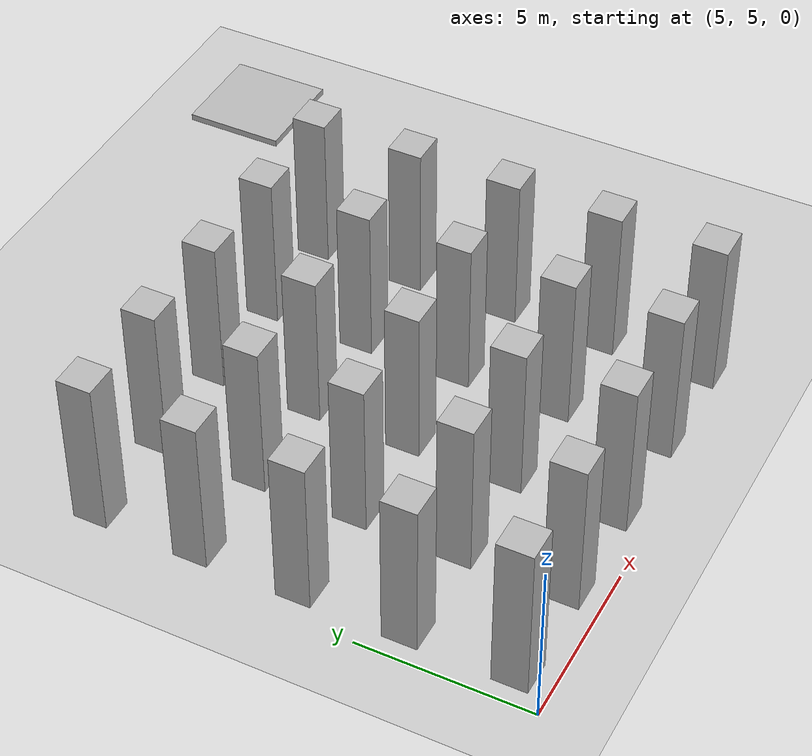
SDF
<sdf version="1.6">
 <world name="default">
  <light name="sun" type="directional">
   <pose>0 0 10 0 0 0</pose>
   <diffuse>0.8 0.8 0.8 1</diffuse>
   <specular>0.2 0.2 0.2 1</specular>
   <attenuation>
    <range>1000</range>
    <constant>0.9</constant>
    <linear>0.01</linear>
    <quadratic>0.001</quadratic>
   </attenuation>
   <direction>-0.5 0.1 -0.9</direction>
  </light>
  <model name="ground_plane">
   <static>1</static>
   <link name="link">
    <collision name="collision">
     <geometry><plane><normal>0 0 1</normal><size>100 100</size></plane></geometry>
     <surface>
      <contact><collide_bitmask>65535</collide_bitmask></contact>
      <friction><ode><mu>100</mu><mu2>50</mu2></ode></friction>
     </surface>
    </collision>
    <visual name="visual">
     <cast_shadows>0</cast_shadows>
     <geometry><plane><normal>0 0 1</normal><size>100 100</size></plane></geometry>
     <material>
      <script><uri>file://media/materials/scripts/gazebo.material</uri><name>Gazebo/Grey</name></script>
     </material>
    </visual>
   </link>
  </model>
  <physics name="default_physics" default="0" type="ode">
   <ode>
    <solver>
     <type>quick</type>
     <iters>10</iters>
     <sor>1.3</sor>
     <use_dynamic_moi_rescaling>0</use_dynamic_moi_rescaling>
    </solver>
    <constraints>
     <cfm>0</cfm>
     <erp>0.2</erp>
     <contact_max_correcting_vel>100</contact_max_correcting_vel>
     <contact_surface_layer>0.001</contact_surface_layer>
    </constraints>
   </ode>
   <max_step_size>0.004</max_step_size>
   <real_time_factor>1</real_time_factor>
   <real_time_update_rate>250</real_time_update_rate>
  </physics>
  <model name="goal">
   <pose>23 23 0.1 0 0 0</pose>
   <link name="link">
    <collision name="collision"><geometry><box><size>3.0 3.0 0.2</size></box></geometry></collision>
    <visual name="visual"><geometry><box><size>3.0 3.0 0.2</size></box></geometry></visual>
    <inertial>
     <inertia><ixx>1</ixx><ixy>0</ixy><ixz>0</ixz><iyy>1</iyy><iyz>0</iyz><izz>1</izz></inertia>
     <mass>1</mass>
    </inertial>
   </link>
  </model>
  <model name="box01">
   <pose>6 6 2.4 0 0 0</pose>
   <link name="link">
    <collision name="collision"><geometry><box><size>1.0 1.0 4.8</size></box></geometry></collision>
    <visual name="visual"><geometry><box><size>1.0 1.0 4.8</size></box></geometry></visual>
    <inertial>
     <inertia><ixx>1</ixx><ixy>0</ixy><ixz>0</ixz><iyy>1</iyy><iyz>0</iyz><izz>1</izz></inertia>
     <mass>1</mass>
    </inertial>
   </link>
  </model>
  <model name="box02">
   <pose>6 9 2.4 0 0 0</pose>
   <link name="link">
    <collision name="collision"><geometry><box><size>1.0 1.0 4.8</size></box></geometry></collision>
    <visual name="visual"><geometry><box><size>1.0 1.0 4.8</size></box></geometry></visual>
    <inertial>
     <inertia><ixx>1</ixx><ixy>0</ixy><ixz>0</ixz><iyy>1</iyy><iyz>0</iyz><izz>1</izz></inertia>
     <mass>1</mass>
    </inertial>
   </link>
  </model>
  <model name="box03">
   <pose>6 12 2.4 0 0 0</pose>
   <link name="link">
    <collision name="collision"><geometry><box><size>1.0 1.0 4.8</size></box></geometry></collision>
    <visual name="visual"><geometry><box><size>1.0 1.0 4.8</size></box></geometry></visual>
    <inertial>
     <inertia><ixx>1</ixx><ixy>0</ixy><ixz>0</ixz><iyy>1</iyy><iyz>0</iyz><izz>1</izz></inertia>
     <mass>1</mass>
    </inertial>
   </link>
  </model>
  <model name="box04">
   <pose>6 15 2.4 0 0 0</pose>
   <link name="link">
    <collision name="collision"><geometry><box><size>1.0 1.0 4.8</size></box></geometry></collision>
    <visual name="visual"><geometry><box><size>1.0 1.0 4.8</size></box></geometry></visual>
    <inertial>
     <inertia><ixx>1</ixx><ixy>0</ixy><ixz>0</ixz><iyy>1</iyy><iyz>0</iyz><izz>1</izz></inertia>
     <mass>1</mass>
    </inertial>
   </link>
  </model>
  <model name="box05">
   <pose>6 18 2.4 0 0 0</pose>
   <link name="link">
    <collision name="collision"><geometry><box><size>1.0 1.0 4.8</size></box></geometry></collision>
    <visual name="visual"><geometry><box><size>1.0 1.0 4.8</size></box></geometry></visual>
    <inertial>
     <inertia><ixx>1</ixx><ixy>0</ixy><ixz>0</ixz><iyy>1</iyy><iyz>0</iyz><izz>1</izz></inertia>
     <mass>1</mass>
    </inertial>
   </link>
  </model>
  <model name="box11">
   <pose>9 6 2.4 0 0 0</pose>
   <link name="link">
    <collision name="collision"><geometry><box><size>1.0 1.0 4.8</size></box></geometry></collision>
    <visual name="visual"><geometry><box><size>1.0 1.0 4.8</size></box></geometry></visual>
    <inertial>
     <inertia><ixx>1</ixx><ixy>0</ixy><ixz>0</ixz><iyy>1</iyy><iyz>0</iyz><izz>1</izz></inertia>
     <mass>1</mass>
    </inertial>
   </link>
  </model>
  <model name="box12">
   <pose>9 9 2.4 0 0 0</pose>
   <link name="link">
    <collision name="collision"><geometry><box><size>1.0 1.0 4.8</size></box></geometry></collision>
    <visual name="visual"><geometry><box><size>1.0 1.0 4.8</size></box></geometry></visual>
    <inertial>
     <inertia><ixx>1</ixx><ixy>0</ixy><ixz>0</ixz><iyy>1</iyy><iyz>0</iyz><izz>1</izz></inertia>
     <mass>1</mass>
    </inertial>
   </link>
  </model>
  <model name="box13">
   <pose>9 12 2.4 0 0 0</pose>
   <link name="link">
    <collision name="collision"><geometry><box><size>1.0 1.0 4.8</size></box></geometry></collision>
    <visual name="visual"><geometry><box><size>1.0 1.0 4.8</size></box></geometry></visual>
    <inertial>
     <inertia><ixx>1</ixx><ixy>0</ixy><ixz>0</ixz><iyy>1</iyy><iyz>0</iyz><izz>1</izz></inertia>
     <mass>1</mass>
    </inertial>
   </link>
  </model>
  <model name="box14">
   <pose>9 15 2.4 0 0 0</pose>
   <link name="link">
    <collision name="collision"><geometry><box><size>1.0 1.0 4.8</size></box></geometry></collision>
    <visual name="visual"><geometry><box><size>1.0 1.0 4.8</size></box></geometry></visual>
    <inertial>
     <inertia><ixx>1</ixx><ixy>0</ixy><ixz>0</ixz><iyy>1</iyy><iyz>0</iyz><izz>1</izz></inertia>
     <mass>1</mass>
    </inertial>
   </link>
  </model>
  <model name="box15">
   <pose>9 18 2.4 0 0 0</pose>
   <link name="link">
    <collision name="collision"><geometry><box><size>1.0 1.0 4.8</size></box></geometry></collision>
    <visual name="visual"><geometry><box><size>1.0 1.0 4.8</size></box></geometry></visual>
    <inertial>
     <inertia><ixx>1</ixx><ixy>0</ixy><ixz>0</ixz><iyy>1</iyy><iyz>0</iyz><izz>1</izz></inertia>
     <mass>1</mass>
    </inertial>
   </link>
  </model>
  <model name="box21">
   <pose>12 6 2.4 0 0 0</pose>
   <link name="link">
    <collision name="collision"><geometry><box><size>1.0 1.0 4.8</size></box></geometry></collision>
    <visual name="visual"><geometry><box><size>1.0 1.0 4.8</size></box></geometry></visual>
    <inertial>
     <inertia><ixx>1</ixx><ixy>0</ixy><ixz>0</ixz><iyy>1</iyy><iyz>0</iyz><izz>1</izz></inertia>
     <mass>1</mass>
    </inertial>
   </link>
  </model>
  <model name="box22">
   <pose>12 9 2.4 0 0 0</pose>
   <link name="link">
    <collision name="collision"><geometry><box><size>1.0 1.0 4.8</size></box></geometry></collision>
    <visual name="visual"><geometry><box><size>1.0 1.0 4.8</size></box></geometry></visual>
    <inertial>
     <inertia><ixx>1</ixx><ixy>0</ixy><ixz>0</ixz><iyy>1</iyy><iyz>0</iyz><izz>1</izz></inertia>
     <mass>1</mass>
    </inertial>
   </link>
  </model>
  <model name="box23">
   <pose>12 12 2.4 0 0 0</pose>
   <link name="link">
    <collision name="collision"><geometry><box><size>1.0 1.0 4.8</size></box></geometry></collision>
    <visual name="visual"><geometry><box><size>1.0 1.0 4.8</size></box></geometry></visual>
    <inertial>
     <inertia><ixx>1</ixx><ixy>0</ixy><ixz>0</ixz><iyy>1</iyy><iyz>0</iyz><izz>1</izz></inertia>
     <mass>1</mass>
    </inertial>
   </link>
  </model>
  <model name="box24">
   <pose>12 15 2.4 0 0 0</pose>
   <link name="link">
    <collision name="collision"><geometry><box><size>1.0 1.0 4.8</size></box></geometry></collision>
    <visual name="visual"><geometry><box><size>1.0 1.0 4.8</size></box></geometry></visual>
    <inertial>
     <inertia><ixx>1</ixx><ixy>0</ixy><ixz>0</ixz><iyy>1</iyy><iyz>0</iyz><izz>1</izz></inertia>
     <mass>1</mass>
    </inertial>
   </link>
  </model>
  <model name="box25">
   <pose>12 18 2.4 0 0 0</pose>
   <link name="link">
    <collision name="collision"><geometry><box><size>1.0 1.0 4.8</size></box></geometry></collision>
    <visual name="visual"><geometry><box><size>1.0 1.0 4.8</size></box></geometry></visual>
    <inertial>
     <inertia><ixx>1</ixx><ixy>0</ixy><ixz>0</ixz><iyy>1</iyy><iyz>0</iyz><izz>1</izz></inertia>
     <mass>1</mass>
    </inertial>
   </link>
  </model>
  <model name="box31">
   <pose>15 6 2.4 0 0 0</pose>
   <link name="link">
    <collision name="collision"><geometry><box><size>1.0 1.0 4.8</size></box></geometry></collision>
    <visual name="visual"><geometry><box><size>1.0 1.0 4.8</size></box></geometry></visual>
    <inertial>
     <inertia><ixx>1</ixx><ixy>0</ixy><ixz>0</ixz><iyy>1</iyy><iyz>0</iyz><izz>1</izz></inertia>
     <mass>1</mass>
    </inertial>
   </link>
  </model>
  <model name="box32">
   <pose>15 9 2.4 0 0 0</pose>
   <link name="link">
    <collision name="collision"><geometry><box><size>1.0 1.0 4.8</size></box></geometry></collision>
    <visual name="visual"><geometry><box><size>1.0 1.0 4.8</size></box></geometry></visual>
    <inertial>
     <inertia><ixx>1</ixx><ixy>0</ixy><ixz>0</ixz><iyy>1</iyy><iyz>0</iyz><izz>1</izz></inertia>
     <mass>1</mass>
    </inertial>
   </link>
  </model>
  <model name="box33">
   <pose>15 12 2.4 0 0 0</pose>
   <link name="link">
    <collision name="collision"><geometry><box><size>1.0 1.0 4.8</size></box></geometry></collision>
    <visual name="visual"><geometry><box><size>1.0 1.0 4.8</size></box></geometry></visual>
    <inertial>
     <inertia><ixx>1</ixx><ixy>0</ixy><ixz>0</ixz><iyy>1</iyy><iyz>0</iyz><izz>1</izz></inertia>
     <mass>1</mass>
    </inertial>
   </link>
  </model>
  <model name="box34">
   <pose>15 15 2.4 0 0 0</pose>
   <link name="link">
    <collision name="collision"><geometry><box><size>1.0 1.0 4.8</size></box></geometry></collision>
    <visual name="visual"><geometry><box><size>1.0 1.0 4.8</size></box></geometry></visual>
    <inertial>
     <inertia><ixx>1</ixx><ixy>0</ixy><ixz>0</ixz><iyy>1</iyy><iyz>0</iyz><izz>1</izz></inertia>
     <mass>1</mass>
    </inertial>
   </link>
  </model>
  <model name="box35">
   <pose>15 18 2.4 0 0 0</pose>
   <link name="link">
    <collision name="collision"><geometry><box><size>1.0 1.0 4.8</size></box></geometry></collision>
    <visual name="visual"><geometry><box><size>1.0 1.0 4.8</size></box></geometry></visual>
    <inertial>
     <inertia><ixx>1</ixx><ixy>0</ixy><ixz>0</ixz><iyy>1</iyy><iyz>0</iyz><izz>1</izz></inertia>
     <mass>1</mass>
    </inertial>
   </link>
  </model>
  <model name="box41">
   <pose>18 6 2.4 0 0 0</pose>
   <link name="link">
    <collision name="collision"><geometry><box><size>1.0 1.0 4.8</size></box></geometry></collision>
    <visual name="visual"><geometry><box><size>1.0 1.0 4.8</size></box></geometry></visual>
    <inertial>
     <inertia><ixx>1</ixx><ixy>0</ixy><ixz>0</ixz><iyy>1</iyy><iyz>0</iyz><izz>1</izz></inertia>
     <mass>1</mass>
    </inertial>
   </link>
  </model>
  <model name="box42">
   <pose>18 9 2.4 0 0 0</pose>
   <link name="link">
    <collision name="collision"><geometry><box><size>1.0 1.0 4.8</size></box></geometry></collision>
    <visual name="visual"><geometry><box><size>1.0 1.0 4.8</size></box></geometry></visual>
    <inertial>
     <inertia><ixx>1</ixx><ixy>0</ixy><ixz>0</ixz><iyy>1</iyy><iyz>0</iyz><izz>1</izz></inertia>
     <mass>1</mass>
    </inertial>
   </link>
  </model>
  <model name="box43">
   <pose>18 12 2.4 0 0 0</pose>
   <link name="link">
    <collision name="collision"><geometry><box><size>1.0 1.0 4.8</size></box></geometry></collision>
    <visual name="visual"><geometry><box><size>1.0 1.0 4.8</size></box></geometry></visual>
    <inertial>
     <inertia><ixx>1</ixx><ixy>0</ixy><ixz>0</ixz><iyy>1</iyy><iyz>0</iyz><izz>1</izz></inertia>
     <mass>1</mass>
    </inertial>
   </link>
  </model>
  <model name="box44">
   <pose>18 15 2.4 0 0 0</pose>
   <link name="link">
    <collision name="collision"><geometry><box><size>1.0 1.0 4.8</size></box></geometry></collision>
    <visual name="visual"><geometry><box><size>1.0 1.0 4.8</size></box></geometry></visual>
    <inertial>
     <inertia><ixx>1</ixx><ixy>0</ixy><ixz>0</ixz><iyy>1</iyy><iyz>0</iyz><izz>1</izz></inertia>
     <mass>1</mass>
    </inertial>
   </link>
  </model>
  <model name="box45">
   <pose>18 18 2.4 0 0 0</pose>
   <link name="link">
    <collision name="collision"><geometry><box><size>1.0 1.0 4.8</size></box></geometry></collision>
    <visual name="visual"><geometry><box><size>1.0 1.0 4.8</size></box></geometry></visual>
    <inertial>
     <inertia><ixx>1</ixx><ixy>0</ixy><ixz>0</ixz><iyy>1</iyy><iyz>0</iyz><izz>1</izz></inertia>
     <mass>1</mass>
    </inertial>
   </link>
  </model>
  <gravity>0 0 -9.8066</gravity>
  <magnetic_field>6e-06 2.3e-05 -4.2e-05</magnetic_field>
  <atmosphere type="adiabatic"/>
  <scene><ambient>0.4 0.4 0.4 1</ambient><background>0.7 0.7 0.7 1</background><shadows>1</shadows></scene>
  <audio><device>default</device></audio>
  <spherical_coordinates>
   <surface_model>EARTH_WGS84</surface_model>
   <latitude_deg>0</latitude_deg>
   <longitude_deg>0</longitude_deg>
   <elevation>0</elevation>
   <heading_deg>0</heading_deg>
  </spherical_coordinates>
 </world>
</sdf>
